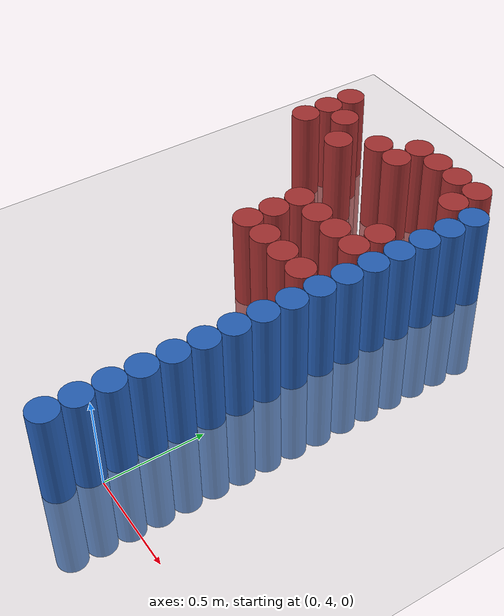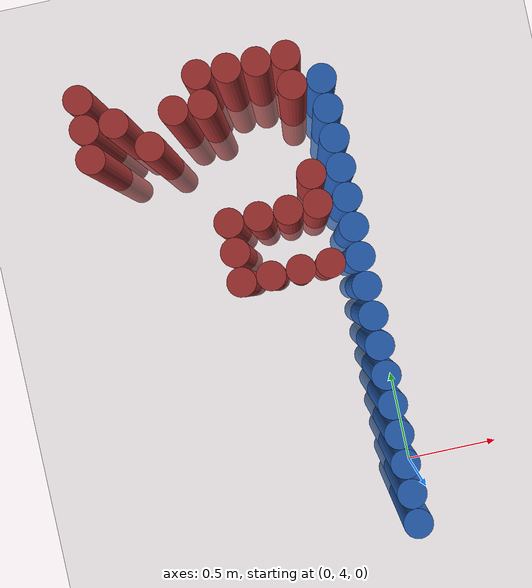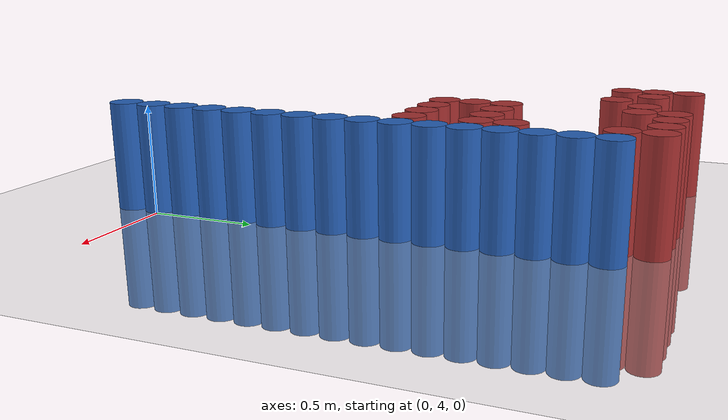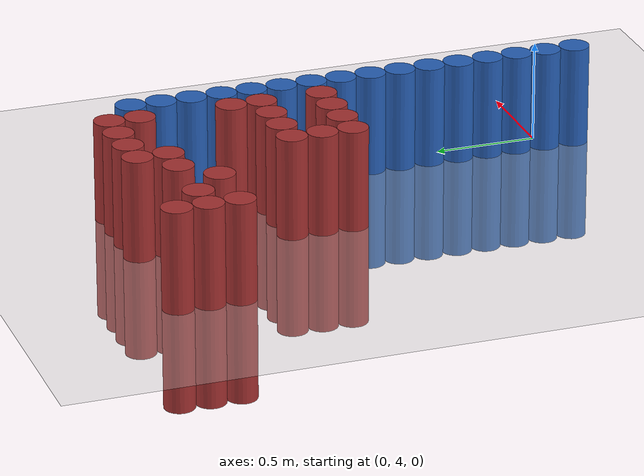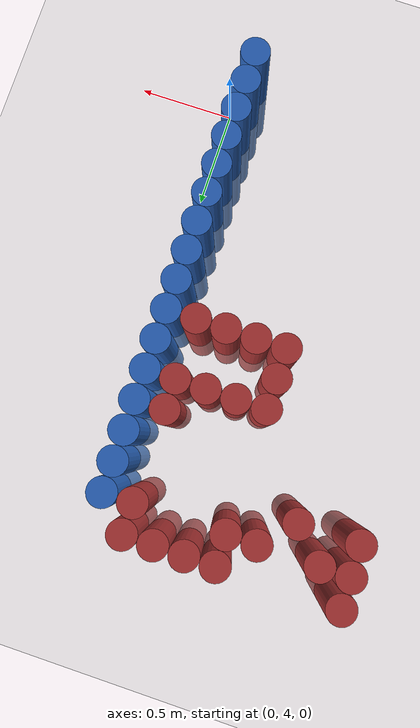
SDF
<sdf version="1.6">
 <world name="default">
  <model name="ground_plane">
   <static>1</static>
   <link name="link">
    <collision name="collision">
     <geometry><plane><normal>0 0 1</normal><size>100 100</size></plane></geometry>
     <surface><friction><ode><mu>100</mu><mu2>50</mu2></ode></friction></surface>
    </collision>
    <visual name="visual">
     <cast_shadows>0</cast_shadows>
     <geometry><plane><normal>0 0 1</normal><size>100 100</size></plane></geometry>
     <material>
      <script><uri>file://media/materials/scripts/gazebo.material</uri><name>Gazebo/Grey</name></script>
     </material>
    </visual>
   </link>
  </model>
  <model name="unit_cylinder_78">
   <static>1</static>
   <pose>-0.075000 3.825000 0.000000 0.000000 0.000000 0.000000</pose>
   <link name="link">
    <inertial>
     <mass>1</mass>
     <inertia><ixx>0.145833</ixx><ixy>0</ixy><ixz>0</ixz><iyy>0.145833</iyy><iyz>0</iyz><izz>0.125</izz></inertia>
    </inertial>
    <collision name="collision">
     <geometry><cylinder><radius>0.075000</radius><length>1</length></cylinder></geometry>
    </collision>
    <visual name="visual">
     <geometry><cylinder><radius>0.075000</radius><length>1</length></cylinder></geometry>
     <material>
      <ambient>0.152000 0.379000 0.720000 1</ambient>
      <diffuse>0.152000 0.379000 0.720000 1</diffuse>
     </material>
     <material>
      <script><name>Gazebo/Grey</name><uri>file://media/materials/scripts/gazebo.material</uri></script>
     </material>
    </visual>
    <sensor name="sensor_contact" type="contact"><contact><collision>collision</collision></contact></sensor>
   </link>
   <plugin filename="gz-sim-touchplugin-system" name="gz::sim::systems::TouchPlugin">
    <target>robot</target>
    <namespace>robot</namespace>
    <time>0.001</time>
    <enabled>true</enabled>
   </plugin>
  </model>
  <model name="unit_cylinder_80">
   <static>1</static>
   <pose>-0.075000 3.975000 0.000000 0.000000 0.000000 0.000000</pose>
   <link name="link">
    <inertial>
     <mass>1</mass>
     <inertia><ixx>0.145833</ixx><ixy>0</ixy><ixz>0</ixz><iyy>0.145833</iyy><iyz>0</iyz><izz>0.125</izz></inertia>
    </inertial>
    <collision name="collision">
     <geometry><cylinder><radius>0.075000</radius><length>1</length></cylinder></geometry>
    </collision>
    <visual name="visual">
     <geometry><cylinder><radius>0.075000</radius><length>1</length></cylinder></geometry>
     <material>
      <ambient>0.152000 0.379000 0.720000 1</ambient>
      <diffuse>0.152000 0.379000 0.720000 1</diffuse>
     </material>
     <material>
      <script><name>Gazebo/Grey</name><uri>file://media/materials/scripts/gazebo.material</uri></script>
     </material>
    </visual>
    <sensor name="sensor_contact" type="contact"><contact><collision>collision</collision></contact></sensor>
   </link>
   <plugin filename="gz-sim-touchplugin-system" name="gz::sim::systems::TouchPlugin">
    <target>robot</target>
    <namespace>robot</namespace>
    <time>0.001</time>
    <enabled>true</enabled>
   </plugin>
  </model>
  <model name="unit_cylinder_82">
   <static>1</static>
   <pose>-0.075000 4.125000 0.000000 0.000000 0.000000 0.000000</pose>
   <link name="link">
    <inertial>
     <mass>1</mass>
     <inertia><ixx>0.145833</ixx><ixy>0</ixy><ixz>0</ixz><iyy>0.145833</iyy><iyz>0</iyz><izz>0.125</izz></inertia>
    </inertial>
    <collision name="collision">
     <geometry><cylinder><radius>0.075000</radius><length>1</length></cylinder></geometry>
    </collision>
    <visual name="visual">
     <geometry><cylinder><radius>0.075000</radius><length>1</length></cylinder></geometry>
     <material>
      <ambient>0.152000 0.379000 0.720000 1</ambient>
      <diffuse>0.152000 0.379000 0.720000 1</diffuse>
     </material>
     <material>
      <script><name>Gazebo/Grey</name><uri>file://media/materials/scripts/gazebo.material</uri></script>
     </material>
    </visual>
    <sensor name="sensor_contact" type="contact"><contact><collision>collision</collision></contact></sensor>
   </link>
   <plugin filename="gz-sim-touchplugin-system" name="gz::sim::systems::TouchPlugin">
    <target>robot</target>
    <namespace>robot</namespace>
    <time>0.001</time>
    <enabled>true</enabled>
   </plugin>
  </model>
  <model name="unit_cylinder_84">
   <static>1</static>
   <pose>-0.075000 4.275000 0.000000 0.000000 0.000000 0.000000</pose>
   <link name="link">
    <inertial>
     <mass>1</mass>
     <inertia><ixx>0.145833</ixx><ixy>0</ixy><ixz>0</ixz><iyy>0.145833</iyy><iyz>0</iyz><izz>0.125</izz></inertia>
    </inertial>
    <collision name="collision">
     <geometry><cylinder><radius>0.075000</radius><length>1</length></cylinder></geometry>
    </collision>
    <visual name="visual">
     <geometry><cylinder><radius>0.075000</radius><length>1</length></cylinder></geometry>
     <material>
      <ambient>0.152000 0.379000 0.720000 1</ambient>
      <diffuse>0.152000 0.379000 0.720000 1</diffuse>
     </material>
     <material>
      <script><name>Gazebo/Grey</name><uri>file://media/materials/scripts/gazebo.material</uri></script>
     </material>
    </visual>
    <sensor name="sensor_contact" type="contact"><contact><collision>collision</collision></contact></sensor>
   </link>
   <plugin filename="gz-sim-touchplugin-system" name="gz::sim::systems::TouchPlugin">
    <target>robot</target>
    <namespace>robot</namespace>
    <time>0.001</time>
    <enabled>true</enabled>
   </plugin>
  </model>
  <model name="unit_cylinder_86">
   <static>1</static>
   <pose>-0.075000 4.425000 0.000000 0.000000 0.000000 0.000000</pose>
   <link name="link">
    <inertial>
     <mass>1</mass>
     <inertia><ixx>0.145833</ixx><ixy>0</ixy><ixz>0</ixz><iyy>0.145833</iyy><iyz>0</iyz><izz>0.125</izz></inertia>
    </inertial>
    <collision name="collision">
     <geometry><cylinder><radius>0.075000</radius><length>1</length></cylinder></geometry>
    </collision>
    <visual name="visual">
     <geometry><cylinder><radius>0.075000</radius><length>1</length></cylinder></geometry>
     <material>
      <ambient>0.152000 0.379000 0.720000 1</ambient>
      <diffuse>0.152000 0.379000 0.720000 1</diffuse>
     </material>
     <material>
      <script><name>Gazebo/Grey</name><uri>file://media/materials/scripts/gazebo.material</uri></script>
     </material>
    </visual>
    <sensor name="sensor_contact" type="contact"><contact><collision>collision</collision></contact></sensor>
   </link>
   <plugin filename="gz-sim-touchplugin-system" name="gz::sim::systems::TouchPlugin">
    <target>robot</target>
    <namespace>robot</namespace>
    <time>0.001</time>
    <enabled>true</enabled>
   </plugin>
  </model>
  <model name="unit_cylinder_88">
   <static>1</static>
   <pose>-0.075000 4.575000 0.000000 0.000000 0.000000 0.000000</pose>
   <link name="link">
    <inertial>
     <mass>1</mass>
     <inertia><ixx>0.145833</ixx><ixy>0</ixy><ixz>0</ixz><iyy>0.145833</iyy><iyz>0</iyz><izz>0.125</izz></inertia>
    </inertial>
    <collision name="collision">
     <geometry><cylinder><radius>0.075000</radius><length>1</length></cylinder></geometry>
    </collision>
    <visual name="visual">
     <geometry><cylinder><radius>0.075000</radius><length>1</length></cylinder></geometry>
     <material>
      <ambient>0.152000 0.379000 0.720000 1</ambient>
      <diffuse>0.152000 0.379000 0.720000 1</diffuse>
     </material>
     <material>
      <script><name>Gazebo/Grey</name><uri>file://media/materials/scripts/gazebo.material</uri></script>
     </material>
    </visual>
    <sensor name="sensor_contact" type="contact"><contact><collision>collision</collision></contact></sensor>
   </link>
   <plugin filename="gz-sim-touchplugin-system" name="gz::sim::systems::TouchPlugin">
    <target>robot</target>
    <namespace>robot</namespace>
    <time>0.001</time>
    <enabled>true</enabled>
   </plugin>
  </model>
  <model name="unit_cylinder_90">
   <static>1</static>
   <pose>-0.075000 4.725000 0.000000 0.000000 0.000000 0.000000</pose>
   <link name="link">
    <inertial>
     <mass>1</mass>
     <inertia><ixx>0.145833</ixx><ixy>0</ixy><ixz>0</ixz><iyy>0.145833</iyy><iyz>0</iyz><izz>0.125</izz></inertia>
    </inertial>
    <collision name="collision">
     <geometry><cylinder><radius>0.075000</radius><length>1</length></cylinder></geometry>
    </collision>
    <visual name="visual">
     <geometry><cylinder><radius>0.075000</radius><length>1</length></cylinder></geometry>
     <material>
      <ambient>0.152000 0.379000 0.720000 1</ambient>
      <diffuse>0.152000 0.379000 0.720000 1</diffuse>
     </material>
     <material>
      <script><name>Gazebo/Grey</name><uri>file://media/materials/scripts/gazebo.material</uri></script>
     </material>
    </visual>
    <sensor name="sensor_contact" type="contact"><contact><collision>collision</collision></contact></sensor>
   </link>
   <plugin filename="gz-sim-touchplugin-system" name="gz::sim::systems::TouchPlugin">
    <target>robot</target>
    <namespace>robot</namespace>
    <time>0.001</time>
    <enabled>true</enabled>
   </plugin>
  </model>
  <model name="unit_cylinder_92">
   <static>1</static>
   <pose>-0.075000 4.875000 0.000000 0.000000 0.000000 0.000000</pose>
   <link name="link">
    <inertial>
     <mass>1</mass>
     <inertia><ixx>0.145833</ixx><ixy>0</ixy><ixz>0</ixz><iyy>0.145833</iyy><iyz>0</iyz><izz>0.125</izz></inertia>
    </inertial>
    <collision name="collision">
     <geometry><cylinder><radius>0.075000</radius><length>1</length></cylinder></geometry>
    </collision>
    <visual name="visual">
     <geometry><cylinder><radius>0.075000</radius><length>1</length></cylinder></geometry>
     <material>
      <ambient>0.152000 0.379000 0.720000 1</ambient>
      <diffuse>0.152000 0.379000 0.720000 1</diffuse>
     </material>
     <material>
      <script><name>Gazebo/Grey</name><uri>file://media/materials/scripts/gazebo.material</uri></script>
     </material>
    </visual>
    <sensor name="sensor_contact" type="contact"><contact><collision>collision</collision></contact></sensor>
   </link>
   <plugin filename="gz-sim-touchplugin-system" name="gz::sim::systems::TouchPlugin">
    <target>robot</target>
    <namespace>robot</namespace>
    <time>0.001</time>
    <enabled>true</enabled>
   </plugin>
  </model>
  <model name="unit_cylinder_94">
   <static>1</static>
   <pose>-0.075000 5.025000 0.000000 0.000000 0.000000 0.000000</pose>
   <link name="link">
    <inertial>
     <mass>1</mass>
     <inertia><ixx>0.145833</ixx><ixy>0</ixy><ixz>0</ixz><iyy>0.145833</iyy><iyz>0</iyz><izz>0.125</izz></inertia>
    </inertial>
    <collision name="collision">
     <geometry><cylinder><radius>0.075000</radius><length>1</length></cylinder></geometry>
    </collision>
    <visual name="visual">
     <geometry><cylinder><radius>0.075000</radius><length>1</length></cylinder></geometry>
     <material>
      <ambient>0.152000 0.379000 0.720000 1</ambient>
      <diffuse>0.152000 0.379000 0.720000 1</diffuse>
     </material>
     <material>
      <script><name>Gazebo/Grey</name><uri>file://media/materials/scripts/gazebo.material</uri></script>
     </material>
    </visual>
    <sensor name="sensor_contact" type="contact"><contact><collision>collision</collision></contact></sensor>
   </link>
   <plugin filename="gz-sim-touchplugin-system" name="gz::sim::systems::TouchPlugin">
    <target>robot</target>
    <namespace>robot</namespace>
    <time>0.001</time>
    <enabled>true</enabled>
   </plugin>
  </model>
  <model name="unit_cylinder_237">
   <static>1</static>
   <pose>-1.275000 5.925000 0.000000 0.000000 0.000000 0.000000</pose>
   <link name="link">
    <inertial>
     <mass>1</mass>
     <inertia><ixx>0.145833</ixx><ixy>0</ixy><ixz>0</ixz><iyy>0.145833</iyy><iyz>0</iyz><izz>0.125</izz></inertia>
    </inertial>
    <collision name="collision">
     <geometry><cylinder><radius>0.075000</radius><length>1</length></cylinder></geometry>
    </collision>
    <visual name="visual">
     <geometry><cylinder><radius>0.075000</radius><length>1</length></cylinder></geometry>
     <material>
      <ambient>0.648000 0.192000 0.192000 1</ambient>
      <diffuse>0.648000 0.192000 0.192000 1</diffuse>
     </material>
     <material>
      <script><name>Gazebo/Grey</name><uri>file://media/materials/scripts/gazebo.material</uri></script>
     </material>
    </visual>
    <sensor name="sensor_contact" type="contact"><contact><collision>collision</collision></contact></sensor>
   </link>
   <plugin filename="gz-sim-touchplugin-system" name="gz::sim::systems::TouchPlugin">
    <target>robot</target>
    <namespace>robot</namespace>
    <time>0.001</time>
    <enabled>true</enabled>
   </plugin>
  </model>
  <model name="unit_cylinder_238">
   <static>1</static>
   <pose>-1.275000 6.075000 0.000000 0.000000 0.000000 0.000000</pose>
   <link name="link">
    <inertial>
     <mass>1</mass>
     <inertia><ixx>0.145833</ixx><ixy>0</ixy><ixz>0</ixz><iyy>0.145833</iyy><iyz>0</iyz><izz>0.125</izz></inertia>
    </inertial>
    <collision name="collision">
     <geometry><cylinder><radius>0.075000</radius><length>1</length></cylinder></geometry>
    </collision>
    <visual name="visual">
     <geometry><cylinder><radius>0.075000</radius><length>1</length></cylinder></geometry>
     <material>
      <ambient>0.648000 0.192000 0.192000 1</ambient>
      <diffuse>0.648000 0.192000 0.192000 1</diffuse>
     </material>
     <material>
      <script><name>Gazebo/Grey</name><uri>file://media/materials/scripts/gazebo.material</uri></script>
     </material>
    </visual>
    <sensor name="sensor_contact" type="contact"><contact><collision>collision</collision></contact></sensor>
   </link>
   <plugin filename="gz-sim-touchplugin-system" name="gz::sim::systems::TouchPlugin">
    <target>robot</target>
    <namespace>robot</namespace>
    <time>0.001</time>
    <enabled>true</enabled>
   </plugin>
  </model>
  <model name="unit_cylinder_239">
   <static>1</static>
   <pose>-1.275000 6.225000 0.000000 0.000000 0.000000 0.000000</pose>
   <link name="link">
    <inertial>
     <mass>1</mass>
     <inertia><ixx>0.145833</ixx><ixy>0</ixy><ixz>0</ixz><iyy>0.145833</iyy><iyz>0</iyz><izz>0.125</izz></inertia>
    </inertial>
    <collision name="collision">
     <geometry><cylinder><radius>0.075000</radius><length>1</length></cylinder></geometry>
    </collision>
    <visual name="visual">
     <geometry><cylinder><radius>0.075000</radius><length>1</length></cylinder></geometry>
     <material>
      <ambient>0.648000 0.192000 0.192000 1</ambient>
      <diffuse>0.648000 0.192000 0.192000 1</diffuse>
     </material>
     <material>
      <script><name>Gazebo/Grey</name><uri>file://media/materials/scripts/gazebo.material</uri></script>
     </material>
    </visual>
    <sensor name="sensor_contact" type="contact"><contact><collision>collision</collision></contact></sensor>
   </link>
   <plugin filename="gz-sim-touchplugin-system" name="gz::sim::systems::TouchPlugin">
    <target>robot</target>
    <namespace>robot</namespace>
    <time>0.001</time>
    <enabled>true</enabled>
   </plugin>
  </model>
  <model name="unit_cylinder_246">
   <static>1</static>
   <pose>-1.125000 6.075000 0.000000 0.000000 0.000000 0.000000</pose>
   <link name="link">
    <inertial>
     <mass>1</mass>
     <inertia><ixx>0.145833</ixx><ixy>0</ixy><ixz>0</ixz><iyy>0.145833</iyy><iyz>0</iyz><izz>0.125</izz></inertia>
    </inertial>
    <collision name="collision">
     <geometry><cylinder><radius>0.075000</radius><length>1</length></cylinder></geometry>
    </collision>
    <visual name="visual">
     <geometry><cylinder><radius>0.075000</radius><length>1</length></cylinder></geometry>
     <material>
      <ambient>0.648000 0.192000 0.192000 1</ambient>
      <diffuse>0.648000 0.192000 0.192000 1</diffuse>
     </material>
     <material>
      <script><name>Gazebo/Grey</name><uri>file://media/materials/scripts/gazebo.material</uri></script>
     </material>
    </visual>
    <sensor name="sensor_contact" type="contact"><contact><collision>collision</collision></contact></sensor>
   </link>
   <plugin filename="gz-sim-touchplugin-system" name="gz::sim::systems::TouchPlugin">
    <target>robot</target>
    <namespace>robot</namespace>
    <time>0.001</time>
    <enabled>true</enabled>
   </plugin>
  </model>
  <model name="unit_cylinder_252">
   <static>1</static>
   <pose>-0.975000 5.925000 0.000000 0.000000 0.000000 0.000000</pose>
   <link name="link">
    <inertial>
     <mass>1</mass>
     <inertia><ixx>0.145833</ixx><ixy>0</ixy><ixz>0</ixz><iyy>0.145833</iyy><iyz>0</iyz><izz>0.125</izz></inertia>
    </inertial>
    <collision name="collision">
     <geometry><cylinder><radius>0.075000</radius><length>1</length></cylinder></geometry>
    </collision>
    <visual name="visual">
     <geometry><cylinder><radius>0.075000</radius><length>1</length></cylinder></geometry>
     <material>
      <ambient>0.648000 0.192000 0.192000 1</ambient>
      <diffuse>0.648000 0.192000 0.192000 1</diffuse>
     </material>
     <material>
      <script><name>Gazebo/Grey</name><uri>file://media/materials/scripts/gazebo.material</uri></script>
     </material>
    </visual>
    <sensor name="sensor_contact" type="contact"><contact><collision>collision</collision></contact></sensor>
   </link>
   <plugin filename="gz-sim-touchplugin-system" name="gz::sim::systems::TouchPlugin">
    <target>robot</target>
    <namespace>robot</namespace>
    <time>0.001</time>
    <enabled>true</enabled>
   </plugin>
  </model>
  <model name="unit_cylinder_260">
   <static>1</static>
   <pose>-0.825000 6.075000 0.000000 0.000000 0.000000 0.000000</pose>
   <link name="link">
    <inertial>
     <mass>1</mass>
     <inertia><ixx>0.145833</ixx><ixy>0</ixy><ixz>0</ixz><iyy>0.145833</iyy><iyz>0</iyz><izz>0.125</izz></inertia>
    </inertial>
    <collision name="collision">
     <geometry><cylinder><radius>0.075000</radius><length>1</length></cylinder></geometry>
    </collision>
    <visual name="visual">
     <geometry><cylinder><radius>0.075000</radius><length>1</length></cylinder></geometry>
     <material>
      <ambient>0.648000 0.192000 0.192000 1</ambient>
      <diffuse>0.648000 0.192000 0.192000 1</diffuse>
     </material>
     <material>
      <script><name>Gazebo/Grey</name><uri>file://media/materials/scripts/gazebo.material</uri></script>
     </material>
    </visual>
    <sensor name="sensor_contact" type="contact"><contact><collision>collision</collision></contact></sensor>
   </link>
   <plugin filename="gz-sim-touchplugin-system" name="gz::sim::systems::TouchPlugin">
    <target>robot</target>
    <namespace>robot</namespace>
    <time>0.001</time>
    <enabled>true</enabled>
   </plugin>
  </model>
  <model name="unit_cylinder_271">
   <static>1</static>
   <pose>-0.675000 5.175000 0.000000 0.000000 0.000000 0.000000</pose>
   <link name="link">
    <inertial>
     <mass>1</mass>
     <inertia><ixx>0.145833</ixx><ixy>0</ixy><ixz>0</ixz><iyy>0.145833</iyy><iyz>0</iyz><izz>0.125</izz></inertia>
    </inertial>
    <collision name="collision">
     <geometry><cylinder><radius>0.075000</radius><length>1</length></cylinder></geometry>
    </collision>
    <visual name="visual">
     <geometry><cylinder><radius>0.075000</radius><length>1</length></cylinder></geometry>
     <material>
      <ambient>0.648000 0.192000 0.192000 1</ambient>
      <diffuse>0.648000 0.192000 0.192000 1</diffuse>
     </material>
     <material>
      <script><name>Gazebo/Grey</name><uri>file://media/materials/scripts/gazebo.material</uri></script>
     </material>
    </visual>
    <sensor name="sensor_contact" type="contact"><contact><collision>collision</collision></contact></sensor>
   </link>
   <plugin filename="gz-sim-touchplugin-system" name="gz::sim::systems::TouchPlugin">
    <target>robot</target>
    <namespace>robot</namespace>
    <time>0.001</time>
    <enabled>true</enabled>
   </plugin>
  </model>
  <model name="unit_cylinder_272">
   <static>1</static>
   <pose>-0.675000 5.325000 0.000000 0.000000 0.000000 0.000000</pose>
   <link name="link">
    <inertial>
     <mass>1</mass>
     <inertia><ixx>0.145833</ixx><ixy>0</ixy><ixz>0</ixz><iyy>0.145833</iyy><iyz>0</iyz><izz>0.125</izz></inertia>
    </inertial>
    <collision name="collision">
     <geometry><cylinder><radius>0.075000</radius><length>1</length></cylinder></geometry>
    </collision>
    <visual name="visual">
     <geometry><cylinder><radius>0.075000</radius><length>1</length></cylinder></geometry>
     <material>
      <ambient>0.648000 0.192000 0.192000 1</ambient>
      <diffuse>0.648000 0.192000 0.192000 1</diffuse>
     </material>
     <material>
      <script><name>Gazebo/Grey</name><uri>file://media/materials/scripts/gazebo.material</uri></script>
     </material>
    </visual>
    <sensor name="sensor_contact" type="contact"><contact><collision>collision</collision></contact></sensor>
   </link>
   <plugin filename="gz-sim-touchplugin-system" name="gz::sim::systems::TouchPlugin">
    <target>robot</target>
    <namespace>robot</namespace>
    <time>0.001</time>
    <enabled>true</enabled>
   </plugin>
  </model>
  <model name="unit_cylinder_273">
   <static>1</static>
   <pose>-0.675000 5.475000 0.000000 0.000000 0.000000 0.000000</pose>
   <link name="link">
    <inertial>
     <mass>1</mass>
     <inertia><ixx>0.145833</ixx><ixy>0</ixy><ixz>0</ixz><iyy>0.145833</iyy><iyz>0</iyz><izz>0.125</izz></inertia>
    </inertial>
    <collision name="collision">
     <geometry><cylinder><radius>0.075000</radius><length>1</length></cylinder></geometry>
    </collision>
    <visual name="visual">
     <geometry><cylinder><radius>0.075000</radius><length>1</length></cylinder></geometry>
     <material>
      <ambient>0.648000 0.192000 0.192000 1</ambient>
      <diffuse>0.648000 0.192000 0.192000 1</diffuse>
     </material>
     <material>
      <script><name>Gazebo/Grey</name><uri>file://media/materials/scripts/gazebo.material</uri></script>
     </material>
    </visual>
    <sensor name="sensor_contact" type="contact"><contact><collision>collision</collision></contact></sensor>
   </link>
   <plugin filename="gz-sim-touchplugin-system" name="gz::sim::systems::TouchPlugin">
    <target>robot</target>
    <namespace>robot</namespace>
    <time>0.001</time>
    <enabled>true</enabled>
   </plugin>
  </model>
  <model name="unit_cylinder_274">
   <static>1</static>
   <pose>-0.675000 6.075000 0.000000 0.000000 0.000000 0.000000</pose>
   <link name="link">
    <inertial>
     <mass>1</mass>
     <inertia><ixx>0.145833</ixx><ixy>0</ixy><ixz>0</ixz><iyy>0.145833</iyy><iyz>0</iyz><izz>0.125</izz></inertia>
    </inertial>
    <collision name="collision">
     <geometry><cylinder><radius>0.075000</radius><length>1</length></cylinder></geometry>
    </collision>
    <visual name="visual">
     <geometry><cylinder><radius>0.075000</radius><length>1</length></cylinder></geometry>
     <material>
      <ambient>0.648000 0.192000 0.192000 1</ambient>
      <diffuse>0.648000 0.192000 0.192000 1</diffuse>
     </material>
     <material>
      <script><name>Gazebo/Grey</name><uri>file://media/materials/scripts/gazebo.material</uri></script>
     </material>
    </visual>
    <sensor name="sensor_contact" type="contact"><contact><collision>collision</collision></contact></sensor>
   </link>
   <plugin filename="gz-sim-touchplugin-system" name="gz::sim::systems::TouchPlugin">
    <target>robot</target>
    <namespace>robot</namespace>
    <time>0.001</time>
    <enabled>true</enabled>
   </plugin>
  </model>
  <model name="unit_cylinder_275">
   <static>1</static>
   <pose>-0.675000 6.225000 0.000000 0.000000 0.000000 0.000000</pose>
   <link name="link">
    <inertial>
     <mass>1</mass>
     <inertia><ixx>0.145833</ixx><ixy>0</ixy><ixz>0</ixz><iyy>0.145833</iyy><iyz>0</iyz><izz>0.125</izz></inertia>
    </inertial>
    <collision name="collision">
     <geometry><cylinder><radius>0.075000</radius><length>1</length></cylinder></geometry>
    </collision>
    <visual name="visual">
     <geometry><cylinder><radius>0.075000</radius><length>1</length></cylinder></geometry>
     <material>
      <ambient>0.648000 0.192000 0.192000 1</ambient>
      <diffuse>0.648000 0.192000 0.192000 1</diffuse>
     </material>
     <material>
      <script><name>Gazebo/Grey</name><uri>file://media/materials/scripts/gazebo.material</uri></script>
     </material>
    </visual>
    <sensor name="sensor_contact" type="contact"><contact><collision>collision</collision></contact></sensor>
   </link>
   <plugin filename="gz-sim-touchplugin-system" name="gz::sim::systems::TouchPlugin">
    <target>robot</target>
    <namespace>robot</namespace>
    <time>0.001</time>
    <enabled>true</enabled>
   </plugin>
  </model>
  <model name="unit_cylinder_288">
   <static>1</static>
   <pose>-0.525000 5.175000 0.000000 0.000000 0.000000 0.000000</pose>
   <link name="link">
    <inertial>
     <mass>1</mass>
     <inertia><ixx>0.145833</ixx><ixy>0</ixy><ixz>0</ixz><iyy>0.145833</iyy><iyz>0</iyz><izz>0.125</izz></inertia>
    </inertial>
    <collision name="collision">
     <geometry><cylinder><radius>0.075000</radius><length>1</length></cylinder></geometry>
    </collision>
    <visual name="visual">
     <geometry><cylinder><radius>0.075000</radius><length>1</length></cylinder></geometry>
     <material>
      <ambient>0.648000 0.192000 0.192000 1</ambient>
      <diffuse>0.648000 0.192000 0.192000 1</diffuse>
     </material>
     <material>
      <script><name>Gazebo/Grey</name><uri>file://media/materials/scripts/gazebo.material</uri></script>
     </material>
    </visual>
    <sensor name="sensor_contact" type="contact"><contact><collision>collision</collision></contact></sensor>
   </link>
   <plugin filename="gz-sim-touchplugin-system" name="gz::sim::systems::TouchPlugin">
    <target>robot</target>
    <namespace>robot</namespace>
    <time>0.001</time>
    <enabled>true</enabled>
   </plugin>
  </model>
  <model name="unit_cylinder_289">
   <static>1</static>
   <pose>-0.525000 5.475000 0.000000 0.000000 0.000000 0.000000</pose>
   <link name="link">
    <inertial>
     <mass>1</mass>
     <inertia><ixx>0.145833</ixx><ixy>0</ixy><ixz>0</ixz><iyy>0.145833</iyy><iyz>0</iyz><izz>0.125</izz></inertia>
    </inertial>
    <collision name="collision">
     <geometry><cylinder><radius>0.075000</radius><length>1</length></cylinder></geometry>
    </collision>
    <visual name="visual">
     <geometry><cylinder><radius>0.075000</radius><length>1</length></cylinder></geometry>
     <material>
      <ambient>0.648000 0.192000 0.192000 1</ambient>
      <diffuse>0.648000 0.192000 0.192000 1</diffuse>
     </material>
     <material>
      <script><name>Gazebo/Grey</name><uri>file://media/materials/scripts/gazebo.material</uri></script>
     </material>
    </visual>
    <sensor name="sensor_contact" type="contact"><contact><collision>collision</collision></contact></sensor>
   </link>
   <plugin filename="gz-sim-touchplugin-system" name="gz::sim::systems::TouchPlugin">
    <target>robot</target>
    <namespace>robot</namespace>
    <time>0.001</time>
    <enabled>true</enabled>
   </plugin>
  </model>
  <model name="unit_cylinder_290">
   <static>1</static>
   <pose>-0.525000 6.225000 0.000000 0.000000 0.000000 0.000000</pose>
   <link name="link">
    <inertial>
     <mass>1</mass>
     <inertia><ixx>0.145833</ixx><ixy>0</ixy><ixz>0</ixz><iyy>0.145833</iyy><iyz>0</iyz><izz>0.125</izz></inertia>
    </inertial>
    <collision name="collision">
     <geometry><cylinder><radius>0.075000</radius><length>1</length></cylinder></geometry>
    </collision>
    <visual name="visual">
     <geometry><cylinder><radius>0.075000</radius><length>1</length></cylinder></geometry>
     <material>
      <ambient>0.648000 0.192000 0.192000 1</ambient>
      <diffuse>0.648000 0.192000 0.192000 1</diffuse>
     </material>
     <material>
      <script><name>Gazebo/Grey</name><uri>file://media/materials/scripts/gazebo.material</uri></script>
     </material>
    </visual>
    <sensor name="sensor_contact" type="contact"><contact><collision>collision</collision></contact></sensor>
   </link>
   <plugin filename="gz-sim-touchplugin-system" name="gz::sim::systems::TouchPlugin">
    <target>robot</target>
    <namespace>robot</namespace>
    <time>0.001</time>
    <enabled>true</enabled>
   </plugin>
  </model>
  <model name="unit_cylinder_296">
   <static>1</static>
   <pose>-0.375000 5.175000 0.000000 0.000000 0.000000 0.000000</pose>
   <link name="link">
    <inertial>
     <mass>1</mass>
     <inertia><ixx>0.145833</ixx><ixy>0</ixy><ixz>0</ixz><iyy>0.145833</iyy><iyz>0</iyz><izz>0.125</izz></inertia>
    </inertial>
    <collision name="collision">
     <geometry><cylinder><radius>0.075000</radius><length>1</length></cylinder></geometry>
    </collision>
    <visual name="visual">
     <geometry><cylinder><radius>0.075000</radius><length>1</length></cylinder></geometry>
     <material>
      <ambient>0.648000 0.192000 0.192000 1</ambient>
      <diffuse>0.648000 0.192000 0.192000 1</diffuse>
     </material>
     <material>
      <script><name>Gazebo/Grey</name><uri>file://media/materials/scripts/gazebo.material</uri></script>
     </material>
    </visual>
    <sensor name="sensor_contact" type="contact"><contact><collision>collision</collision></contact></sensor>
   </link>
   <plugin filename="gz-sim-touchplugin-system" name="gz::sim::systems::TouchPlugin">
    <target>robot</target>
    <namespace>robot</namespace>
    <time>0.001</time>
    <enabled>true</enabled>
   </plugin>
  </model>
  <model name="unit_cylinder_297">
   <static>1</static>
   <pose>-0.375000 5.475000 0.000000 0.000000 0.000000 0.000000</pose>
   <link name="link">
    <inertial>
     <mass>1</mass>
     <inertia><ixx>0.145833</ixx><ixy>0</ixy><ixz>0</ixz><iyy>0.145833</iyy><iyz>0</iyz><izz>0.125</izz></inertia>
    </inertial>
    <collision name="collision">
     <geometry><cylinder><radius>0.075000</radius><length>1</length></cylinder></geometry>
    </collision>
    <visual name="visual">
     <geometry><cylinder><radius>0.075000</radius><length>1</length></cylinder></geometry>
     <material>
      <ambient>0.648000 0.192000 0.192000 1</ambient>
      <diffuse>0.648000 0.192000 0.192000 1</diffuse>
     </material>
     <material>
      <script><name>Gazebo/Grey</name><uri>file://media/materials/scripts/gazebo.material</uri></script>
     </material>
    </visual>
    <sensor name="sensor_contact" type="contact"><contact><collision>collision</collision></contact></sensor>
   </link>
   <plugin filename="gz-sim-touchplugin-system" name="gz::sim::systems::TouchPlugin">
    <target>robot</target>
    <namespace>robot</namespace>
    <time>0.001</time>
    <enabled>true</enabled>
   </plugin>
  </model>
  <model name="unit_cylinder_298">
   <static>1</static>
   <pose>-0.375000 6.225000 0.000000 0.000000 0.000000 0.000000</pose>
   <link name="link">
    <inertial>
     <mass>1</mass>
     <inertia><ixx>0.145833</ixx><ixy>0</ixy><ixz>0</ixz><iyy>0.145833</iyy><iyz>0</iyz><izz>0.125</izz></inertia>
    </inertial>
    <collision name="collision">
     <geometry><cylinder><radius>0.075000</radius><length>1</length></cylinder></geometry>
    </collision>
    <visual name="visual">
     <geometry><cylinder><radius>0.075000</radius><length>1</length></cylinder></geometry>
     <material>
      <ambient>0.648000 0.192000 0.192000 1</ambient>
      <diffuse>0.648000 0.192000 0.192000 1</diffuse>
     </material>
     <material>
      <script><name>Gazebo/Grey</name><uri>file://media/materials/scripts/gazebo.material</uri></script>
     </material>
    </visual>
    <sensor name="sensor_contact" type="contact"><contact><collision>collision</collision></contact></sensor>
   </link>
   <plugin filename="gz-sim-touchplugin-system" name="gz::sim::systems::TouchPlugin">
    <target>robot</target>
    <namespace>robot</namespace>
    <time>0.001</time>
    <enabled>true</enabled>
   </plugin>
  </model>
  <model name="unit_cylinder_304">
   <static>1</static>
   <pose>-0.225000 5.175000 0.000000 0.000000 0.000000 0.000000</pose>
   <link name="link">
    <inertial>
     <mass>1</mass>
     <inertia><ixx>0.145833</ixx><ixy>0</ixy><ixz>0</ixz><iyy>0.145833</iyy><iyz>0</iyz><izz>0.125</izz></inertia>
    </inertial>
    <collision name="collision">
     <geometry><cylinder><radius>0.075000</radius><length>1</length></cylinder></geometry>
    </collision>
    <visual name="visual">
     <geometry><cylinder><radius>0.075000</radius><length>1</length></cylinder></geometry>
     <material>
      <ambient>0.648000 0.192000 0.192000 1</ambient>
      <diffuse>0.648000 0.192000 0.192000 1</diffuse>
     </material>
     <material>
      <script><name>Gazebo/Grey</name><uri>file://media/materials/scripts/gazebo.material</uri></script>
     </material>
    </visual>
    <sensor name="sensor_contact" type="contact"><contact><collision>collision</collision></contact></sensor>
   </link>
   <plugin filename="gz-sim-touchplugin-system" name="gz::sim::systems::TouchPlugin">
    <target>robot</target>
    <namespace>robot</namespace>
    <time>0.001</time>
    <enabled>true</enabled>
   </plugin>
  </model>
  <model name="unit_cylinder_305">
   <static>1</static>
   <pose>-0.225000 5.475000 0.000000 0.000000 0.000000 0.000000</pose>
   <link name="link">
    <inertial>
     <mass>1</mass>
     <inertia><ixx>0.145833</ixx><ixy>0</ixy><ixz>0</ixz><iyy>0.145833</iyy><iyz>0</iyz><izz>0.125</izz></inertia>
    </inertial>
    <collision name="collision">
     <geometry><cylinder><radius>0.075000</radius><length>1</length></cylinder></geometry>
    </collision>
    <visual name="visual">
     <geometry><cylinder><radius>0.075000</radius><length>1</length></cylinder></geometry>
     <material>
      <ambient>0.648000 0.192000 0.192000 1</ambient>
      <diffuse>0.648000 0.192000 0.192000 1</diffuse>
     </material>
     <material>
      <script><name>Gazebo/Grey</name><uri>file://media/materials/scripts/gazebo.material</uri></script>
     </material>
    </visual>
    <sensor name="sensor_contact" type="contact"><contact><collision>collision</collision></contact></sensor>
   </link>
   <plugin filename="gz-sim-touchplugin-system" name="gz::sim::systems::TouchPlugin">
    <target>robot</target>
    <namespace>robot</namespace>
    <time>0.001</time>
    <enabled>true</enabled>
   </plugin>
  </model>
  <model name="unit_cylinder_306">
   <static>1</static>
   <pose>-0.225000 5.625000 0.000000 0.000000 0.000000 0.000000</pose>
   <link name="link">
    <inertial>
     <mass>1</mass>
     <inertia><ixx>0.145833</ixx><ixy>0</ixy><ixz>0</ixz><iyy>0.145833</iyy><iyz>0</iyz><izz>0.125</izz></inertia>
    </inertial>
    <collision name="collision">
     <geometry><cylinder><radius>0.075000</radius><length>1</length></cylinder></geometry>
    </collision>
    <visual name="visual">
     <geometry><cylinder><radius>0.075000</radius><length>1</length></cylinder></geometry>
     <material>
      <ambient>0.648000 0.192000 0.192000 1</ambient>
      <diffuse>0.648000 0.192000 0.192000 1</diffuse>
     </material>
     <material>
      <script><name>Gazebo/Grey</name><uri>file://media/materials/scripts/gazebo.material</uri></script>
     </material>
    </visual>
    <sensor name="sensor_contact" type="contact"><contact><collision>collision</collision></contact></sensor>
   </link>
   <plugin filename="gz-sim-touchplugin-system" name="gz::sim::systems::TouchPlugin">
    <target>robot</target>
    <namespace>robot</namespace>
    <time>0.001</time>
    <enabled>true</enabled>
   </plugin>
  </model>
  <model name="unit_cylinder_307">
   <static>1</static>
   <pose>-0.225000 6.075000 0.000000 0.000000 0.000000 0.000000</pose>
   <link name="link">
    <inertial>
     <mass>1</mass>
     <inertia><ixx>0.145833</ixx><ixy>0</ixy><ixz>0</ixz><iyy>0.145833</iyy><iyz>0</iyz><izz>0.125</izz></inertia>
    </inertial>
    <collision name="collision">
     <geometry><cylinder><radius>0.075000</radius><length>1</length></cylinder></geometry>
    </collision>
    <visual name="visual">
     <geometry><cylinder><radius>0.075000</radius><length>1</length></cylinder></geometry>
     <material>
      <ambient>0.648000 0.192000 0.192000 1</ambient>
      <diffuse>0.648000 0.192000 0.192000 1</diffuse>
     </material>
     <material>
      <script><name>Gazebo/Grey</name><uri>file://media/materials/scripts/gazebo.material</uri></script>
     </material>
    </visual>
    <sensor name="sensor_contact" type="contact"><contact><collision>collision</collision></contact></sensor>
   </link>
   <plugin filename="gz-sim-touchplugin-system" name="gz::sim::systems::TouchPlugin">
    <target>robot</target>
    <namespace>robot</namespace>
    <time>0.001</time>
    <enabled>true</enabled>
   </plugin>
  </model>
  <model name="unit_cylinder_308">
   <static>1</static>
   <pose>-0.225000 6.225000 0.000000 0.000000 0.000000 0.000000</pose>
   <link name="link">
    <inertial>
     <mass>1</mass>
     <inertia><ixx>0.145833</ixx><ixy>0</ixy><ixz>0</ixz><iyy>0.145833</iyy><iyz>0</iyz><izz>0.125</izz></inertia>
    </inertial>
    <collision name="collision">
     <geometry><cylinder><radius>0.075000</radius><length>1</length></cylinder></geometry>
    </collision>
    <visual name="visual">
     <geometry><cylinder><radius>0.075000</radius><length>1</length></cylinder></geometry>
     <material>
      <ambient>0.648000 0.192000 0.192000 1</ambient>
      <diffuse>0.648000 0.192000 0.192000 1</diffuse>
     </material>
     <material>
      <script><name>Gazebo/Grey</name><uri>file://media/materials/scripts/gazebo.material</uri></script>
     </material>
    </visual>
    <sensor name="sensor_contact" type="contact"><contact><collision>collision</collision></contact></sensor>
   </link>
   <plugin filename="gz-sim-touchplugin-system" name="gz::sim::systems::TouchPlugin">
    <target>robot</target>
    <namespace>robot</namespace>
    <time>0.001</time>
    <enabled>true</enabled>
   </plugin>
  </model>
  <model name="unit_cylinder_314">
   <static>1</static>
   <pose>-0.075000 5.175000 0.000000 0.000000 0.000000 0.000000</pose>
   <link name="link">
    <inertial>
     <mass>1</mass>
     <inertia><ixx>0.145833</ixx><ixy>0</ixy><ixz>0</ixz><iyy>0.145833</iyy><iyz>0</iyz><izz>0.125</izz></inertia>
    </inertial>
    <collision name="collision">
     <geometry><cylinder><radius>0.075000</radius><length>1</length></cylinder></geometry>
    </collision>
    <visual name="visual">
     <geometry><cylinder><radius>0.075000</radius><length>1</length></cylinder></geometry>
     <material>
      <ambient>0.152000 0.379000 0.720000 1</ambient>
      <diffuse>0.152000 0.379000 0.720000 1</diffuse>
     </material>
     <material>
      <script><name>Gazebo/Grey</name><uri>file://media/materials/scripts/gazebo.material</uri></script>
     </material>
    </visual>
    <sensor name="sensor_contact" type="contact"><contact><collision>collision</collision></contact></sensor>
   </link>
   <plugin filename="gz-sim-touchplugin-system" name="gz::sim::systems::TouchPlugin">
    <target>robot</target>
    <namespace>robot</namespace>
    <time>0.001</time>
    <enabled>true</enabled>
   </plugin>
  </model>
  <model name="unit_cylinder_315">
   <static>1</static>
   <pose>-0.075000 5.325000 0.000000 0.000000 0.000000 0.000000</pose>
   <link name="link">
    <inertial>
     <mass>1</mass>
     <inertia><ixx>0.145833</ixx><ixy>0</ixy><ixz>0</ixz><iyy>0.145833</iyy><iyz>0</iyz><izz>0.125</izz></inertia>
    </inertial>
    <collision name="collision">
     <geometry><cylinder><radius>0.075000</radius><length>1</length></cylinder></geometry>
    </collision>
    <visual name="visual">
     <geometry><cylinder><radius>0.075000</radius><length>1</length></cylinder></geometry>
     <material>
      <ambient>0.152000 0.379000 0.720000 1</ambient>
      <diffuse>0.152000 0.379000 0.720000 1</diffuse>
     </material>
     <material>
      <script><name>Gazebo/Grey</name><uri>file://media/materials/scripts/gazebo.material</uri></script>
     </material>
    </visual>
    <sensor name="sensor_contact" type="contact"><contact><collision>collision</collision></contact></sensor>
   </link>
   <plugin filename="gz-sim-touchplugin-system" name="gz::sim::systems::TouchPlugin">
    <target>robot</target>
    <namespace>robot</namespace>
    <time>0.001</time>
    <enabled>true</enabled>
   </plugin>
  </model>
  <model name="unit_cylinder_316">
   <static>1</static>
   <pose>-0.075000 5.475000 0.000000 0.000000 0.000000 0.000000</pose>
   <link name="link">
    <inertial>
     <mass>1</mass>
     <inertia><ixx>0.145833</ixx><ixy>0</ixy><ixz>0</ixz><iyy>0.145833</iyy><iyz>0</iyz><izz>0.125</izz></inertia>
    </inertial>
    <collision name="collision">
     <geometry><cylinder><radius>0.075000</radius><length>1</length></cylinder></geometry>
    </collision>
    <visual name="visual">
     <geometry><cylinder><radius>0.075000</radius><length>1</length></cylinder></geometry>
     <material>
      <ambient>0.152000 0.379000 0.720000 1</ambient>
      <diffuse>0.152000 0.379000 0.720000 1</diffuse>
     </material>
     <material>
      <script><name>Gazebo/Grey</name><uri>file://media/materials/scripts/gazebo.material</uri></script>
     </material>
    </visual>
    <sensor name="sensor_contact" type="contact"><contact><collision>collision</collision></contact></sensor>
   </link>
   <plugin filename="gz-sim-touchplugin-system" name="gz::sim::systems::TouchPlugin">
    <target>robot</target>
    <namespace>robot</namespace>
    <time>0.001</time>
    <enabled>true</enabled>
   </plugin>
  </model>
  <model name="unit_cylinder_317">
   <static>1</static>
   <pose>-0.075000 5.625000 0.000000 0.000000 0.000000 0.000000</pose>
   <link name="link">
    <inertial>
     <mass>1</mass>
     <inertia><ixx>0.145833</ixx><ixy>0</ixy><ixz>0</ixz><iyy>0.145833</iyy><iyz>0</iyz><izz>0.125</izz></inertia>
    </inertial>
    <collision name="collision">
     <geometry><cylinder><radius>0.075000</radius><length>1</length></cylinder></geometry>
    </collision>
    <visual name="visual">
     <geometry><cylinder><radius>0.075000</radius><length>1</length></cylinder></geometry>
     <material>
      <ambient>0.152000 0.379000 0.720000 1</ambient>
      <diffuse>0.152000 0.379000 0.720000 1</diffuse>
     </material>
     <material>
      <script><name>Gazebo/Grey</name><uri>file://media/materials/scripts/gazebo.material</uri></script>
     </material>
    </visual>
    <sensor name="sensor_contact" type="contact"><contact><collision>collision</collision></contact></sensor>
   </link>
   <plugin filename="gz-sim-touchplugin-system" name="gz::sim::systems::TouchPlugin">
    <target>robot</target>
    <namespace>robot</namespace>
    <time>0.001</time>
    <enabled>true</enabled>
   </plugin>
  </model>
  <model name="unit_cylinder_318">
   <static>1</static>
   <pose>-0.075000 5.775000 0.000000 0.000000 0.000000 0.000000</pose>
   <link name="link">
    <inertial>
     <mass>1</mass>
     <inertia><ixx>0.145833</ixx><ixy>0</ixy><ixz>0</ixz><iyy>0.145833</iyy><iyz>0</iyz><izz>0.125</izz></inertia>
    </inertial>
    <collision name="collision">
     <geometry><cylinder><radius>0.075000</radius><length>1</length></cylinder></geometry>
    </collision>
    <visual name="visual">
     <geometry><cylinder><radius>0.075000</radius><length>1</length></cylinder></geometry>
     <material>
      <ambient>0.152000 0.379000 0.720000 1</ambient>
      <diffuse>0.152000 0.379000 0.720000 1</diffuse>
     </material>
     <material>
      <script><name>Gazebo/Grey</name><uri>file://media/materials/scripts/gazebo.material</uri></script>
     </material>
    </visual>
    <sensor name="sensor_contact" type="contact"><contact><collision>collision</collision></contact></sensor>
   </link>
   <plugin filename="gz-sim-touchplugin-system" name="gz::sim::systems::TouchPlugin">
    <target>robot</target>
    <namespace>robot</namespace>
    <time>0.001</time>
    <enabled>true</enabled>
   </plugin>
  </model>
  <model name="unit_cylinder_319">
   <static>1</static>
   <pose>-0.075000 5.925000 0.000000 0.000000 0.000000 0.000000</pose>
   <link name="link">
    <inertial>
     <mass>1</mass>
     <inertia><ixx>0.145833</ixx><ixy>0</ixy><ixz>0</ixz><iyy>0.145833</iyy><iyz>0</iyz><izz>0.125</izz></inertia>
    </inertial>
    <collision name="collision">
     <geometry><cylinder><radius>0.075000</radius><length>1</length></cylinder></geometry>
    </collision>
    <visual name="visual">
     <geometry><cylinder><radius>0.075000</radius><length>1</length></cylinder></geometry>
     <material>
      <ambient>0.152000 0.379000 0.720000 1</ambient>
      <diffuse>0.152000 0.379000 0.720000 1</diffuse>
     </material>
     <material>
      <script><name>Gazebo/Grey</name><uri>file://media/materials/scripts/gazebo.material</uri></script>
     </material>
    </visual>
    <sensor name="sensor_contact" type="contact"><contact><collision>collision</collision></contact></sensor>
   </link>
   <plugin filename="gz-sim-touchplugin-system" name="gz::sim::systems::TouchPlugin">
    <target>robot</target>
    <namespace>robot</namespace>
    <time>0.001</time>
    <enabled>true</enabled>
   </plugin>
  </model>
  <model name="unit_cylinder_320">
   <static>1</static>
   <pose>-0.075000 6.075000 0.000000 0.000000 0.000000 0.000000</pose>
   <link name="link">
    <inertial>
     <mass>1</mass>
     <inertia><ixx>0.145833</ixx><ixy>0</ixy><ixz>0</ixz><iyy>0.145833</iyy><iyz>0</iyz><izz>0.125</izz></inertia>
    </inertial>
    <collision name="collision">
     <geometry><cylinder><radius>0.075000</radius><length>1</length></cylinder></geometry>
    </collision>
    <visual name="visual">
     <geometry><cylinder><radius>0.075000</radius><length>1</length></cylinder></geometry>
     <material>
      <ambient>0.152000 0.379000 0.720000 1</ambient>
      <diffuse>0.152000 0.379000 0.720000 1</diffuse>
     </material>
     <material>
      <script><name>Gazebo/Grey</name><uri>file://media/materials/scripts/gazebo.material</uri></script>
     </material>
    </visual>
    <sensor name="sensor_contact" type="contact"><contact><collision>collision</collision></contact></sensor>
   </link>
   <plugin filename="gz-sim-touchplugin-system" name="gz::sim::systems::TouchPlugin">
    <target>robot</target>
    <namespace>robot</namespace>
    <time>0.001</time>
    <enabled>true</enabled>
   </plugin>
  </model>
 </world>
</sdf>
